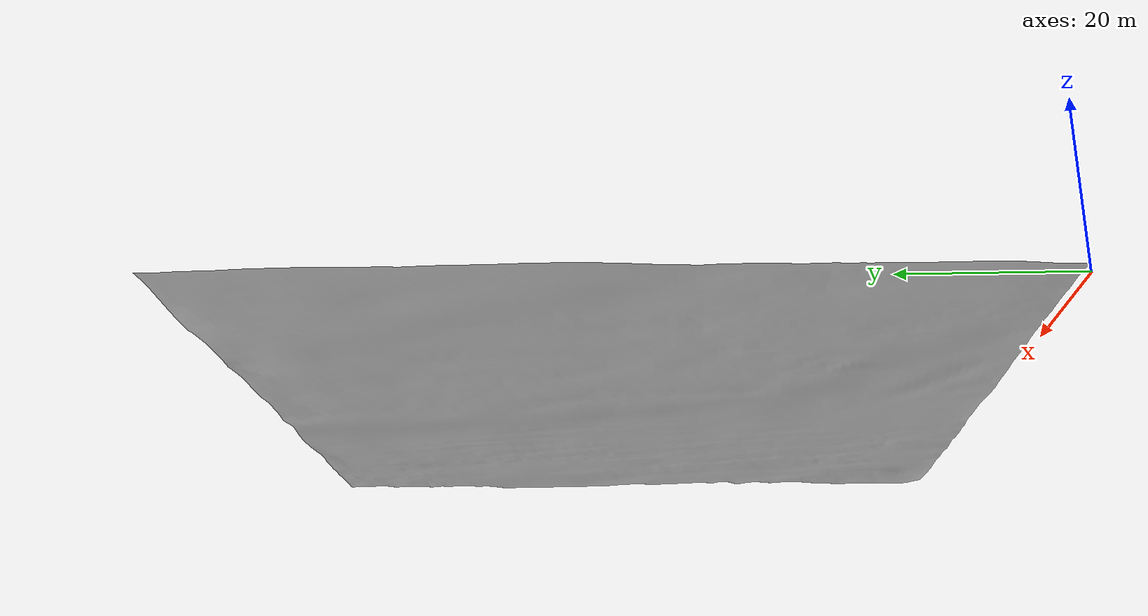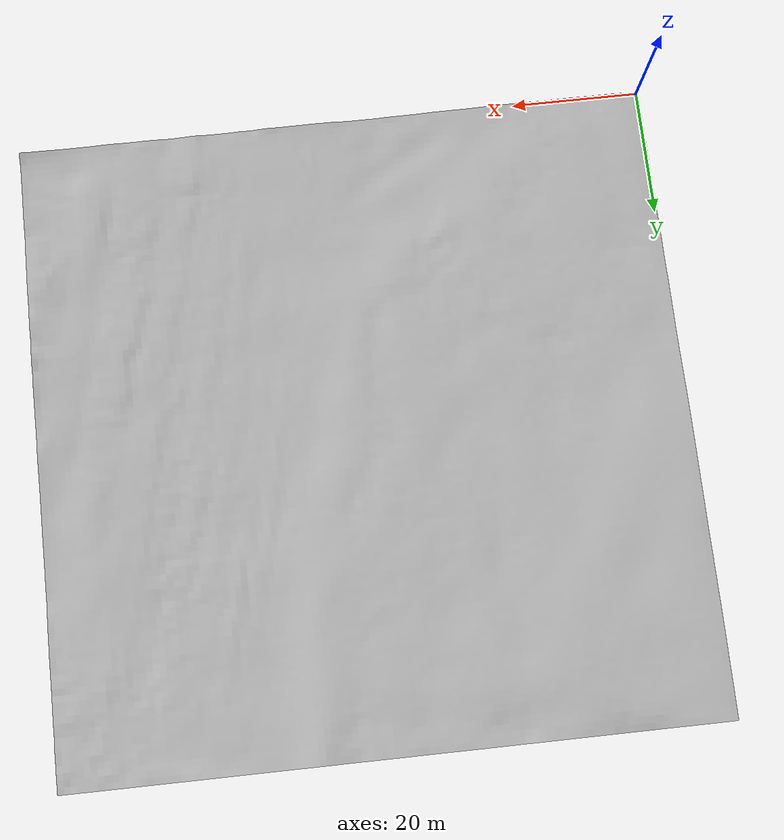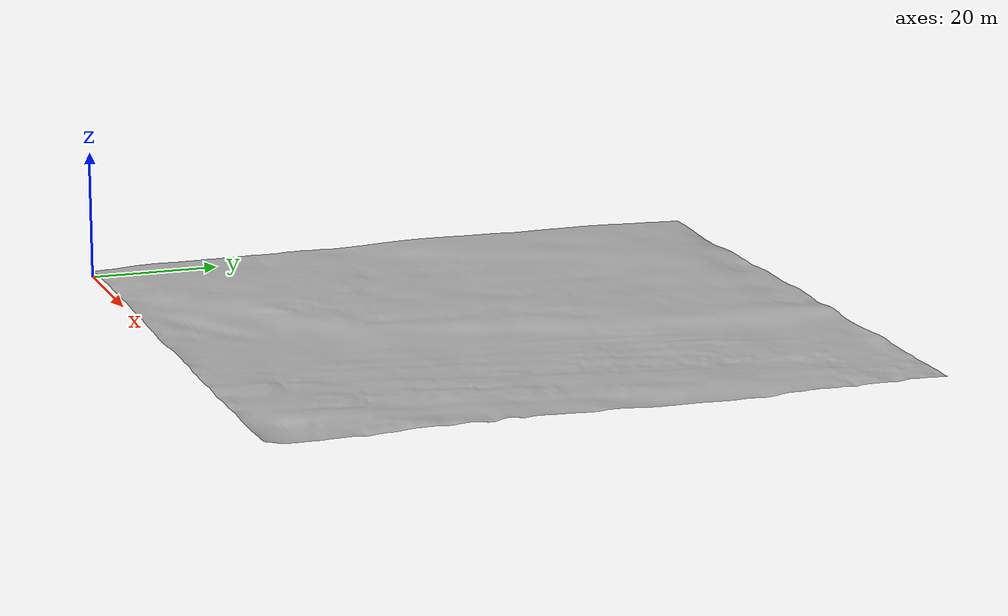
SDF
<?xml version="1.0" ?>
<sdf version="1.4">
    <model name="terrain">
        <static>true</static>
        <link name="terrain1">
            <pose>0 0 0 0 0 0</pose>
            <collision name="terrain1_collision">
                <geometry>
                    <mesh>
                        <uri>model://nisuy100x100x2/meshes/terrain1.dae</uri>
                    </mesh>
                </geometry>
		<surface>
		  <friction>
		    <ode>
		      <mu>100</mu>
		      <mu2>100</mu2>
		    </ode>
		  </friction>
		</surface>
            </collision>
            <visual name="terrain1_visual">
                <geometry>
                    <mesh>
                        <uri>model://nisuy100x100x2/meshes/terrain1.dae</uri>
                    </mesh>
                </geometry>
                <material>
                    <script>
                        <uri>model://nisuy100x100x2/materials/scripts</uri>
                        <uri>model://nisuy100x100x2/materials/textures</uri>
                        <name>terrain/terrain1</name>
                    </script>
                </material>
            </visual>
        </link>
    </model>
</sdf>
